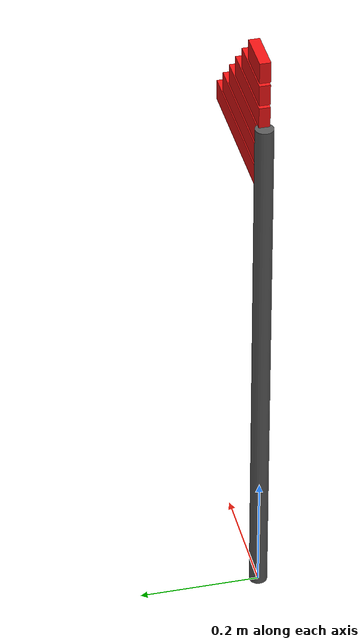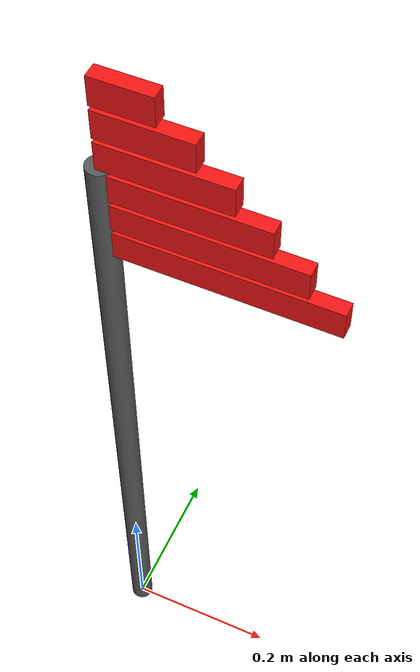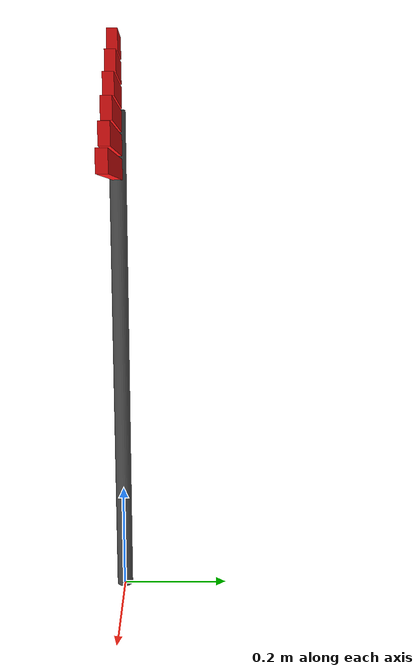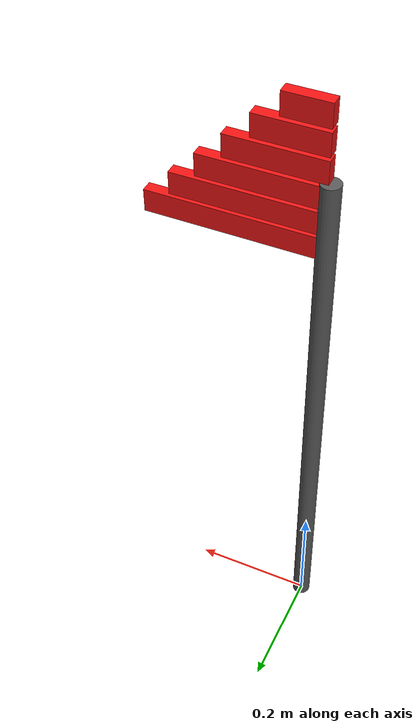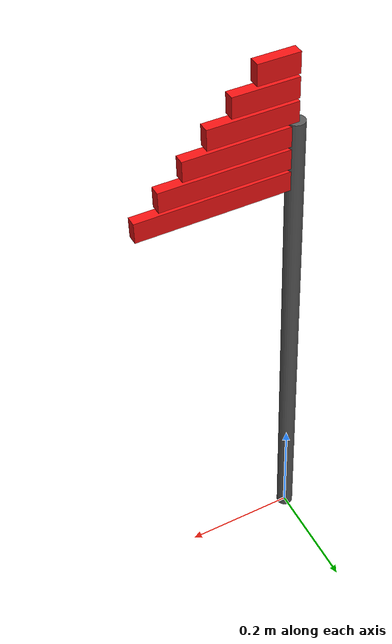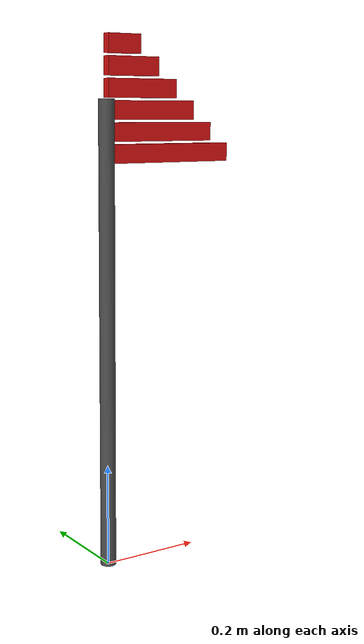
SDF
<?xml version="1.0"?>
<sdf version="1.8">
  <model name="start_finish_flag_red">
    <static>true</static>
    <link name="flag_link">
      <collision name="pole_collision">
        <pose>0 0 0.45 0 0 0</pose>
        <geometry>
          <cylinder>
            <radius>0.015</radius>
            <length>0.90</length>
          </cylinder>
        </geometry>
      </collision>

      <visual name="pole_visual">
        <pose>0 0 0.45 0 0 0</pose>
        <geometry>
          <cylinder>
            <radius>0.015</radius>
            <length>0.90</length>
          </cylinder>
        </geometry>
        <material>
          <ambient>0.25 0.25 0.25 1</ambient>
          <diffuse>0.35 0.35 0.35 1</diffuse>
        </material>
      </visual>

      <visual name="flag_bar_00_visual">
        <pose>0.135 0 0.80 0 0 0</pose>
        <geometry><box><size>0.27 0.018 0.035</size></box></geometry>
        <material>
          <ambient>0.85 0.05 0.05 1</ambient>
          <diffuse>0.95 0.08 0.08 1</diffuse>
          <emissive>0.10 0.00 0.00 1</emissive>
        </material>
      </visual>
      <visual name="flag_bar_01_visual">
        <pose>0.115 0 0.84 0 0 0</pose>
        <geometry><box><size>0.23 0.018 0.035</size></box></geometry>
        <material>
          <ambient>0.85 0.05 0.05 1</ambient>
          <diffuse>0.95 0.08 0.08 1</diffuse>
          <emissive>0.10 0.00 0.00 1</emissive>
        </material>
      </visual>
      <visual name="flag_bar_02_visual">
        <pose>0.095 0 0.88 0 0 0</pose>
        <geometry><box><size>0.19 0.018 0.035</size></box></geometry>
        <material>
          <ambient>0.85 0.05 0.05 1</ambient>
          <diffuse>0.95 0.08 0.08 1</diffuse>
          <emissive>0.10 0.00 0.00 1</emissive>
        </material>
      </visual>
      <visual name="flag_bar_03_visual">
        <pose>0.075 0 0.92 0 0 0</pose>
        <geometry><box><size>0.15 0.018 0.035</size></box></geometry>
        <material>
          <ambient>0.85 0.05 0.05 1</ambient>
          <diffuse>0.95 0.08 0.08 1</diffuse>
          <emissive>0.10 0.00 0.00 1</emissive>
        </material>
      </visual>
      <visual name="flag_bar_04_visual">
        <pose>0.055 0 0.96 0 0 0</pose>
        <geometry><box><size>0.11 0.018 0.035</size></box></geometry>
        <material>
          <ambient>0.85 0.05 0.05 1</ambient>
          <diffuse>0.95 0.08 0.08 1</diffuse>
          <emissive>0.10 0.00 0.00 1</emissive>
        </material>
      </visual>
      <visual name="flag_bar_05_visual">
        <pose>0.035 0 1.00 0 0 0</pose>
        <geometry><box><size>0.07 0.018 0.035</size></box></geometry>
        <material>
          <ambient>0.85 0.05 0.05 1</ambient>
          <diffuse>0.95 0.08 0.08 1</diffuse>
          <emissive>0.10 0.00 0.00 1</emissive>
        </material>
      </visual>
    </link>
  </model>
</sdf>
